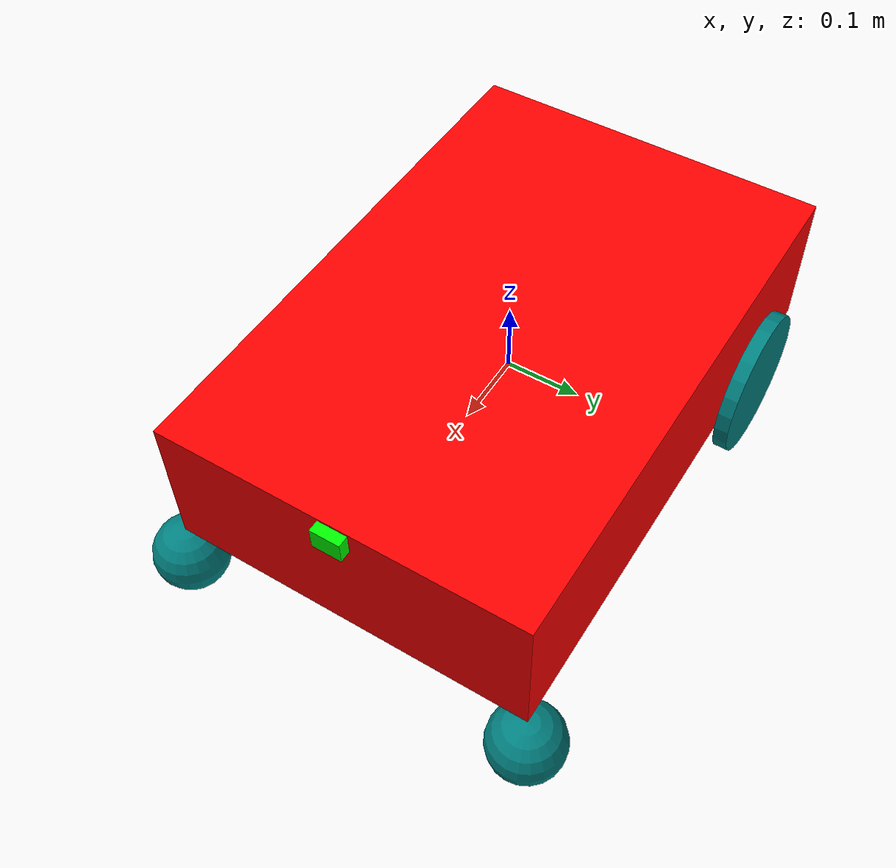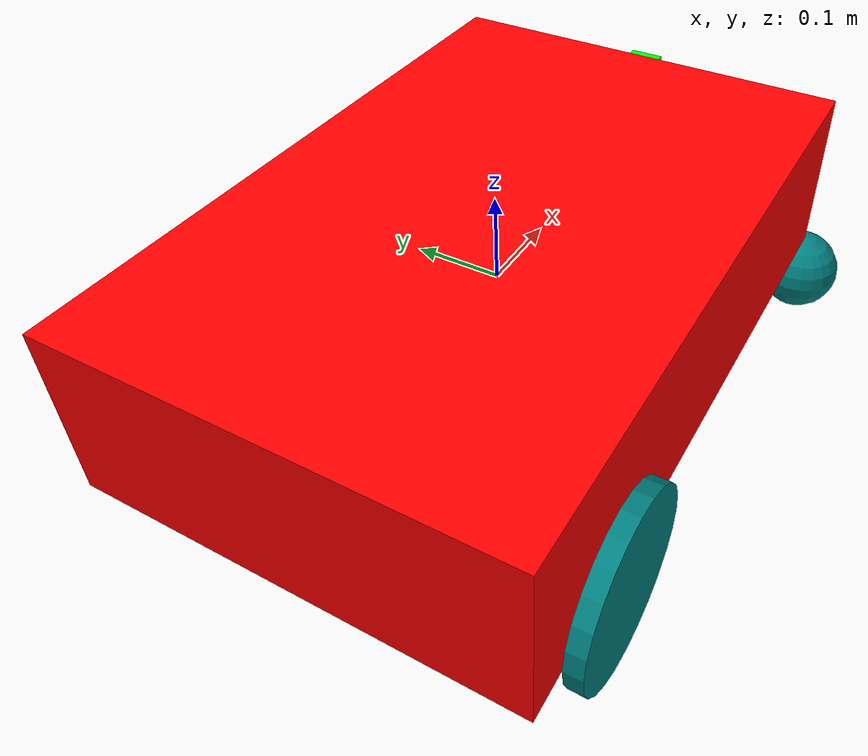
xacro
<?xml version="1.0"?>

<robot xmlns:xacro="http://www.ros.org/wiki/xacro" name="farmr">

    <xacro:property name="PI" value="3.1415"/>

    <xacro:property name="base_width" value="0.50"/>
    <xacro:property name="base_height" value="0.20"/>
    <xacro:property name="base_depth" value="0.750"/>

    <xacro:property name="wheel_rad" value="0.1015"/>
    <xacro:property name="wheel_len" value="0.020"/>
    <xacro:property name="wheel_posY" value="${base_width/2 + wheel_len/2}"/>
    <xacro:property name="wheel_offset" value="${wheel_rad}"/>
    <xacro:property name="wheel_posZ" value="-${(((base_height/2)+wheel_offset)-(wheel_rad*2))+(wheel_rad)}"/>
    <xacro:property name="wheel_posX" value="-${(base_depth/2)-(wheel_rad + 0.05)}"/>

    <xacro:property name="caster_rad" value="${wheel_rad/2.0}"/>
    <xacro:property name="caster_posZ" value="${caster_rad + (base_height/2.0)}"/>

    <xacro:property name="cam_width" value="0.040"/>
    <xacro:property name="cam_height" value="0.015"/>
    <xacro:property name="cam_depth" value="0.030"/>
    <xacro:property name="cam_posZ" value="${(cam_height/2.0)+(base_height/2.0)}"/>

    <!-- ===================== MASSES (tune these to your real robot) ===================== -->
    <xacro:property name="mass_base" value="15.0"/>
    <xacro:property name="mass_wheel" value="1.2"/>
    <xacro:property name="mass_caster" value="0.15"/>
    <xacro:property name="mass_cam" value="0.05"/>

    <!-- ===================== INERTIA MACROS ===================== -->
    <!-- Solid box: dims along x, y, z -->
    <xacro:macro name="box_inertia" params="mass x y z">
        <inertia
            ixx="${(1.0/12.0)*mass*(y*y+z*z)}" ixy="0" ixz="0"
            iyy="${(1.0/12.0)*mass*(x*x+z*z)}" iyz="0"
            izz="${(1.0/12.0)*mass*(x*x+y*y)}"/>
    </xacro:macro>

    <xacro:macro name="cylinder_inertia" params="mass r h">
        <inertia
            ixx="${(1.0/12.0)*mass*(3.0*r*r+h*h)}" ixy="0" ixz="0"
            iyy="${(1.0/12.0)*mass*(3.0*r*r+h*h)}" iyz="0"
            izz="${0.5*mass*r*r}"/>
    </xacro:macro>

    <!-- Solid sphere -->
    <xacro:macro name="sphere_inertia" params="mass r">
        <inertia
            ixx="${0.4*mass*r*r}" ixy="0" ixz="0"
            iyy="${0.4*mass*r*r}" iyz="0"
            izz="${0.4*mass*r*r}"/>
    </xacro:macro>

    <material name="red">
        <color rgba="1 0 0 1"/>
    </material>
    <material name="green">
        <color rgba="0 1 0 1"/>
    </material>
    <material name="teal">
        <color rgba="0 0.5 .5 1"/>
    </material>
    <material name="white">
        <color rgba="1 1 1 1"/>
    </material>

<!--================================ LINKS ==============================================-->

    <link name="base_link">
        <visual>
            <origin xyz="0 0 0" rpy="0 0 0"/>
            <geometry>
                <box size="${base_depth} ${base_width} ${base_height}"/>
            </geometry>
            <material name="red"/>
        </visual>
        <collision>
            <geometry>
               <box size="${base_depth} ${base_width} ${base_height}"/>
            </geometry>
        </collision>
        <inertial>
            <origin xyz="0 0 0" rpy="0 0 0"/>
            <mass value="${mass_base}"/>
            <xacro:box_inertia mass="${mass_base}" x="${base_depth}" y="${base_width}" z="${base_height}"/>
        </inertial>
    </link>

    <link name="left_wheel_link">
        <visual>
            <geometry>
                <cylinder radius="${wheel_rad}" length="${wheel_len}"/>
            </geometry>
            <material name="teal"/>
        </visual>
        <collision>
            <geometry>
                <cylinder radius="${wheel_rad}" length="${wheel_len}"/>
            </geometry>
        </collision>
        <inertial>
            <origin xyz="0 0 0" rpy="0 0 0"/>
            <mass value="${mass_wheel}"/>
            <xacro:cylinder_inertia mass="${mass_wheel}" r="${wheel_rad}" h="${wheel_len}"/>
        </inertial>
    </link>

    <link name="right_wheel_link">
        <visual>
            <geometry>
                <cylinder radius="${wheel_rad}" length="${wheel_len}"/>
            </geometry>
            <material name="teal"/>
        </visual>
        <collision>
            <geometry>
                <cylinder radius="${wheel_rad}" length="${wheel_len}"/>
            </geometry>
        </collision>
        <inertial>
            <origin xyz="0 0 0" rpy="0 0 0"/>
            <mass value="${mass_wheel}"/>
            <xacro:cylinder_inertia mass="${mass_wheel}" r="${wheel_rad}" h="${wheel_len}"/>
        </inertial>
    </link>

    <link name="left_caster_link">
        <visual>
            <geometry>
                <sphere radius="${caster_rad}"/>
            </geometry>
            <material name="teal"/>
        </visual>
        <collision>
            <geometry>
                <sphere radius="${caster_rad}"/>
            </geometry>
        </collision>
        <inertial>
            <origin xyz="0 0 0" rpy="0 0 0"/>
            <mass value="${mass_caster}"/>
            <xacro:sphere_inertia mass="${mass_caster}" r="${caster_rad}"/>
        </inertial>
    </link>

    <link name="right_caster_link">
        <visual>
            <geometry>
                <sphere radius="${caster_rad}"/>
            </geometry>
            <material name="teal"/>
        </visual>
        <collision>
            <geometry>
                <sphere radius="${caster_rad}"/>
            </geometry>
        </collision>
        <inertial>
            <origin xyz="0 0 0" rpy="0 0 0"/>
            <mass value="${mass_caster}"/>
            <xacro:sphere_inertia mass="${mass_caster}" r="${caster_rad}"/>
        </inertial>
    </link>

    <link name="nav_cam_link">
        <visual>
            <geometry>
                <box size="${cam_height} ${cam_width} ${cam_depth}"/>

            </geometry>
            <material name="green"/>
        </visual>
        <collision>
            <geometry>
                <box size="${cam_height} ${cam_width} ${cam_depth}"/>
            </geometry>
        </collision>
        <inertial>
            <origin xyz="0 0 0" rpy="0 0 0"/>
            <mass value="${mass_cam}"/>
            <xacro:box_inertia mass="${mass_cam}" x="${cam_height}" y="${cam_width}" z="${cam_depth}"/>
        </inertial>
    </link>

    <link name="crop_cam_link">
        <visual>
            <geometry>
                <box size="${cam_depth} ${cam_width} ${cam_height}"/>
            </geometry>
            <material name="green"/>
        </visual>
        <collision>
            <geometry>
                <box size="${cam_depth} ${cam_width} ${cam_height}"/>
            </geometry>
        </collision>
        <inertial>
            <origin xyz="0 0 0" rpy="0 0 0"/>
            <mass value="${mass_cam}"/>
            <xacro:box_inertia mass="${mass_cam}" x="${cam_depth}" y="${cam_width}" z="${cam_height}"/>
        </inertial>
    </link>

<!--========================================== JOINT ============================================== -->

    <joint name="base_left_wheel_joint" type="continuous">
        <parent link="base_link"/>
        <child link="left_wheel_link"/>
        <origin xyz="${wheel_posX} ${wheel_posY} ${wheel_posZ}" rpy="${PI/2.0} 0 0"/>
        <axis xyz="0 0 1"/>
    </joint>

    <joint name="base_right_wheel_joint" type="continuous">
        <parent link="base_link"/>
        <child link="right_wheel_link"/>
        <origin xyz="${wheel_posX} -${wheel_posY} ${wheel_posZ}" rpy="${PI/2.0} 0 0"/>
        <axis xyz="0 0 1"/>
    </joint>

    <joint name="base_caster_left_joint" type="fixed">
        <parent link="base_link"/>
        <child link="left_caster_link"/>
        <origin xyz="${base_depth/2.0} -${base_width/2} -${caster_posZ}" rpy="0 0 0"/>
    </joint>

    <joint name="base_caster_right_joint" type="fixed">
        <parent link="base_link"/>
        <child link="right_caster_link"/>
        <origin xyz="${base_depth/2} ${base_width/2} -${caster_posZ}" rpy="0 0 0"/>
    </joint>

    <joint name="base_nav_cam_joint" type="fixed">
        <parent link="base_link"/>
        <child link="nav_cam_link"/>
        <origin xyz="${(base_depth/2.0)+(cam_height/2)} 0 ${cam_posZ-0.025}" rpy="0 0 0"/>
    </joint>

    <joint name="base_crop_cam_joint" type="fixed">
        <parent link="base_link"/>
        <child link="crop_cam_link"/>
        <origin xyz="0 0 -${cam_posZ}" rpy="0 0 0"/>
    </joint>

</robot>
